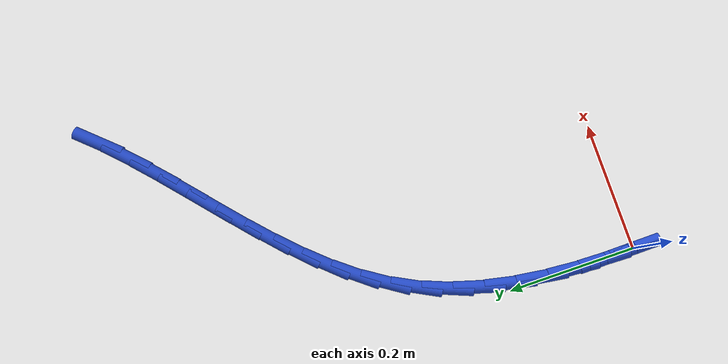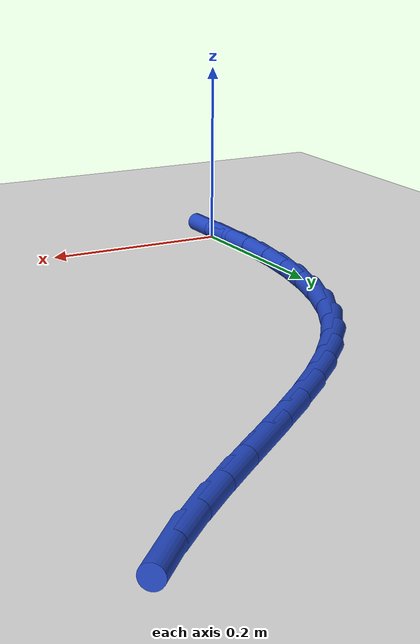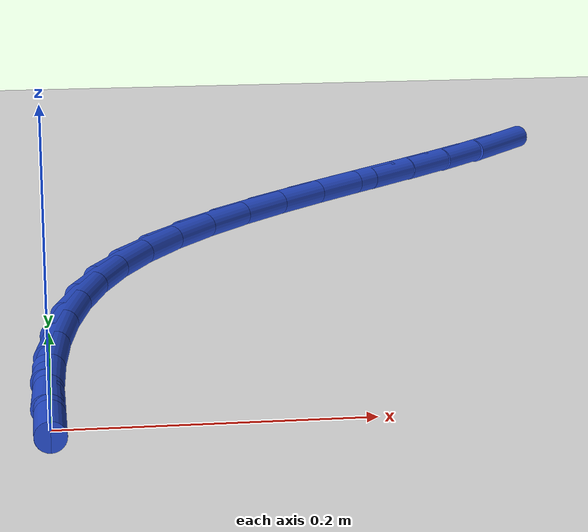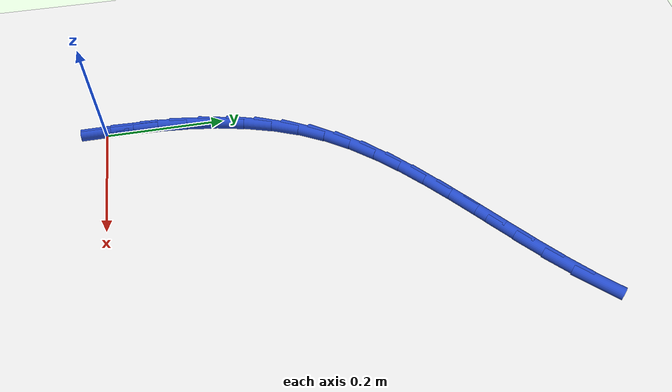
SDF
<sdf version="1.6">
 <world name="default">
  <model name="ground_plane">
   <static>1</static>
   <link name="link">
    <collision name="collision">
     <geometry><plane><normal>0 0 1</normal><size>100 100</size></plane></geometry>
     <surface><friction><ode><mu>100</mu><mu2>50</mu2></ode></friction></surface>
    </collision>
    <visual name="visual">
     <cast_shadows>0</cast_shadows>
     <geometry><plane><normal>0 0 1</normal><size>100 100</size></plane></geometry>
     <material>
      <script><uri>file://media/materials/scripts/gazebo.material</uri><name>Gazebo/WhiteGlow</name></script>
     </material>
    </visual>
   </link>
  </model>
  <model name="line">
   <link name="link_0">
    <pose>-1.9949319973733282e-17 -1.3877787807814457e-17 0.01 0 1.57 -1.5624615225826253</pose>
    <collision name="collision">
     <geometry><cylinder><radius>0.01</radius><length>0.08</length></cylinder></geometry>
    </collision>
    <visual name="visual">
     <material>
      <script><name>Gazebo/Blue</name><uri>file://media/materials/scripts/gazebo.material</uri></script>
     </material>
     <geometry><cylinder><radius>0.01</radius><length>0.08</length></cylinder></geometry>
    </visual>
   </link>
   <link name="link_1">
    <pose>-0.0004156470203592439 0.04986768553568635 0.01 0 1.57 1.537246426346171</pose>
    <collision name="collision">
     <geometry><cylinder><radius>0.01</radius><length>0.08</length></cylinder></geometry>
    </collision>
    <visual name="visual">
     <material>
      <script><name>Gazebo/Blue</name><uri>file://media/materials/scripts/gazebo.material</uri></script>
     </material>
     <geometry><cylinder><radius>0.01</radius><length>0.08</length></cylinder></geometry>
    </visual>
   </link>
   <link name="link_2">
    <pose>0.0012534649457446988 0.09959914966241958 0.01 0 1.57 1.4872726742245124</pose>
    <collision name="collision">
     <geometry><cylinder><radius>0.01</radius><length>0.08</length></cylinder></geometry>
    </collision>
    <visual name="visual">
     <material>
      <script><name>Gazebo/Blue</name><uri>file://media/materials/scripts/gazebo.material</uri></script>
     </material>
     <geometry><cylinder><radius>0.01</radius><length>0.08</length></cylinder></geometry>
    </visual>
   </link>
   <link name="link_3">
    <pose>0.005376136604858719 0.14884364759202498 0.01 0 1.57 1.4282964904165913</pose>
    <collision name="collision">
     <geometry><cylinder><radius>0.01</radius><length>0.08</length></cylinder></geometry>
    </collision>
    <visual name="visual">
     <material>
      <script><name>Gazebo/Blue</name><uri>file://media/materials/scripts/gazebo.material</uri></script>
     </material>
     <geometry><cylinder><radius>0.01</radius><length>0.08</length></cylinder></geometry>
    </visual>
   </link>
   <link name="link_4">
    <pose>0.012321168663529738 0.19725043453632796 0.01 0 1.57 1.359338968343592</pose>
    <collision name="collision">
     <geometry><cylinder><radius>0.01</radius><length>0.08</length></cylinder></geometry>
    </collision>
    <visual name="visual">
     <material>
      <script><name>Gazebo/Blue</name><uri>file://media/materials/scripts/gazebo.material</uri></script>
     </material>
     <geometry><cylinder><radius>0.01</radius><length>0.08</length></cylinder></geometry>
    </visual>
   </link>
   <link name="link_5">
    <pose>0.022457361828304667 0.24446876570715387 0.01 0 1.57 1.2794918623715765</pose>
    <collision name="collision">
     <geometry><cylinder><radius>0.01</radius><length>0.08</length></cylinder></geometry>
    </collision>
    <visual name="visual">
     <material>
      <script><name>Gazebo/Blue</name><uri>file://media/materials/scripts/gazebo.material</uri></script>
     </material>
     <geometry><cylinder><radius>0.01</radius><length>0.08</length></cylinder></geometry>
    </visual>
   </link>
   <link name="link_6">
    <pose>0.036153516805730423 0.2901478963163279 0.01 0 1.57 1.1881411486129976</pose>
    <collision name="collision">
     <geometry><cylinder><radius>0.01</radius><length>0.08</length></cylinder></geometry>
    </collision>
    <visual name="visual">
     <material>
      <script><name>Gazebo/Blue</name><uri>file://media/materials/scripts/gazebo.material</uri></script>
     </material>
     <geometry><cylinder><radius>0.01</radius><length>0.08</length></cylinder></geometry>
    </visual>
   </link>
   <link name="link_7">
    <pose>0.05377843430235392 0.3339370815756756 0.01 0 1.57 1.085473252741672</pose>
    <collision name="collision">
     <geometry><cylinder><radius>0.01</radius><length>0.08</length></cylinder></geometry>
    </collision>
    <visual name="visual">
     <material>
      <script><name>Gazebo/Blue</name><uri>file://media/materials/scripts/gazebo.material</uri></script>
     </material>
     <geometry><cylinder><radius>0.01</radius><length>0.08</length></cylinder></geometry>
    </visual>
   </link>
   <link name="link_8">
    <pose>0.07569360500619322 0.3754906586780467 0.01 0 1.57 0.9825776368577154</pose>
    <collision name="collision">
     <geometry><cylinder><radius>0.01</radius><length>0.08</length></cylinder></geometry>
    </collision>
    <visual name="visual">
     <material>
      <script><name>Gazebo/Blue</name><uri>file://media/materials/scripts/gazebo.material</uri></script>
     </material>
     <geometry><cylinder><radius>0.01</radius><length>0.08</length></cylinder></geometry>
    </visual>
   </link>
   <link name="link_9">
    <pose>0.10186889865802944 0.41473522270658336 0.01 0 1.57 0.8958794211879014</pose>
    <collision name="collision">
     <geometry><cylinder><radius>0.01</radius><length>0.08</length></cylinder></geometry>
    </collision>
    <visual name="visual">
     <material>
      <script><name>Gazebo/Blue</name><uri>file://media/materials/scripts/gazebo.material</uri></script>
     </material>
     <geometry><cylinder><radius>0.01</radius><length>0.08</length></cylinder></geometry>
    </visual>
   </link>
   <link name="link_10">
    <pose>0.1316927472945343 0.4520015887019509 0.01 0 1.57 0.8268269276010971</pose>
    <collision name="collision">
     <geometry><cylinder><radius>0.01</radius><length>0.08</length></cylinder></geometry>
    </collision>
    <visual name="visual">
     <material>
      <script><name>Gazebo/Blue</name><uri>file://media/materials/scripts/gazebo.material</uri></script>
     </material>
     <geometry><cylinder><radius>0.01</radius><length>0.08</length></cylinder></geometry>
    </visual>
   </link>
   <link name="link_11">
    <pose>0.1645064409252646 0.48765334520413034 0.01 0 1.57 0.7746992108108078</pose>
    <collision name="collision">
     <geometry><cylinder><radius>0.01</radius><length>0.08</length></cylinder></geometry>
    </collision>
    <visual name="visual">
     <material>
      <script><name>Gazebo/Blue</name><uri>file://media/materials/scripts/gazebo.material</uri></script>
     </material>
     <geometry><cylinder><radius>0.01</radius><length>0.08</length></cylinder></geometry>
    </visual>
   </link>
   <link name="link_12">
    <pose>0.19965126955977727 0.5220540807531029 0.01 0 1.57 0.738455221369678</pose>
    <collision name="collision">
     <geometry><cylinder><radius>0.01</radius><length>0.08</length></cylinder></geometry>
    </collision>
    <visual name="visual">
     <material>
      <script><name>Gazebo/Blue</name><uri>file://media/materials/scripts/gazebo.material</uri></script>
     </material>
     <geometry><cylinder><radius>0.01</radius><length>0.08</length></cylinder></geometry>
    </visual>
   </link>
   <link name="link_13">
    <pose>0.23646852320762904 0.5555673838888494 0.01 0 1.57 0.7171411883246047</pose>
    <collision name="collision">
     <geometry><cylinder><radius>0.01</radius><length>0.08</length></cylinder></geometry>
    </collision>
    <visual name="visual">
     <material>
      <script><name>Gazebo/Blue</name><uri>file://media/materials/scripts/gazebo.material</uri></script>
     </material>
     <geometry><cylinder><radius>0.01</radius><length>0.08</length></cylinder></geometry>
    </visual>
   </link>
   <link name="link_14">
    <pose>0.2742994918783767 0.5885568431513512 0.01 0 1.57 0.7101094055200052</pose>
    <collision name="collision">
     <geometry><cylinder><radius>0.01</radius><length>0.08</length></cylinder></geometry>
    </collision>
    <visual name="visual">
     <material>
      <script><name>Gazebo/Blue</name><uri>file://media/materials/scripts/gazebo.material</uri></script>
     </material>
     <geometry><cylinder><radius>0.01</radius><length>0.08</length></cylinder></geometry>
    </visual>
   </link>
   <link name="link_15">
    <pose>0.31248546558157725 0.6213860470805893 0.01 0 1.57 0.7171163417923704</pose>
    <collision name="collision">
     <geometry><cylinder><radius>0.01</radius><length>0.08</length></cylinder></geometry>
    </collision>
    <visual name="visual">
     <material>
      <script><name>Gazebo/Blue</name><uri>file://media/materials/scripts/gazebo.material</uri></script>
     </material>
     <geometry><cylinder><radius>0.01</radius><length>0.08</length></cylinder></geometry>
    </visual>
   </link>
   <link name="link_16">
    <pose>0.3503677343267876 0.6544185842165452 0.01 0 1.57 0.7383480109168092</pose>
    <collision name="collision">
     <geometry><cylinder><radius>0.01</radius><length>0.08</length></cylinder></geometry>
    </collision>
    <visual name="visual">
     <material>
      <script><name>Gazebo/Blue</name><uri>file://media/materials/scripts/gazebo.material</uri></script>
     </material>
     <geometry><cylinder><radius>0.01</radius><length>0.08</length></cylinder></geometry>
    </visual>
   </link>
   <link name="link_17">
    <pose>0.3872875881235644 0.6880180430991996 0.01 0 1.57 0.7743893854324299</pose>
    <collision name="collision">
     <geometry><cylinder><radius>0.01</radius><length>0.08</length></cylinder></geometry>
    </collision>
    <visual name="visual">
     <material>
      <script><name>Gazebo/Blue</name><uri>file://media/materials/scripts/gazebo.material</uri></script>
     </material>
     <geometry><cylinder><radius>0.01</radius><length>0.08</length></cylinder></geometry>
    </visual>
   </link>
   <link name="link_18">
    <pose>0.42258631698146454 0.7225480122685337 0.01 0 1.57 0.8261230684143543</pose>
    <collision name="collision">
     <geometry><cylinder><radius>0.01</radius><length>0.08</length></cylinder></geometry>
    </collision>
    <visual name="visual">
     <material>
      <script><name>Gazebo/Blue</name><uri>file://media/materials/scripts/gazebo.material</uri></script>
     </material>
     <geometry><cylinder><radius>0.01</radius><length>0.08</length></cylinder></geometry>
    </visual>
   </link>
   <link name="link_170">
    <pose>-1.734723475976807e-17 -1.249000902703301e-16 0.01 0 1.57 -1.5609168423912916</pose>
    <collision name="collision">
     <geometry><cylinder><radius>0.01</radius><length>0.08</length></cylinder></geometry>
    </collision>
    <visual name="visual">
     <material>
      <script><name>Gazebo/Blue</name><uri>file://media/materials/scripts/gazebo.material</uri></script>
     </material>
     <geometry><cylinder><radius>0.01</radius><length>0.08</length></cylinder></geometry>
    </visual>
   </link>
   <link name="link_171">
    <pose>-0.0004929600844406044 0.04989572591758659 0.01 0 1.57 -1.5609168423912916</pose>
    <collision name="collision">
     <geometry><cylinder><radius>0.01</radius><length>0.08</length></cylinder></geometry>
    </collision>
    <visual name="visual">
     <material>
      <script><name>Gazebo/Blue</name><uri>file://media/materials/scripts/gazebo.material</uri></script>
     </material>
     <geometry><cylinder><radius>0.01</radius><length>0.08</length></cylinder></geometry>
    </visual>
   </link>
  </model>
 </world>
</sdf>
